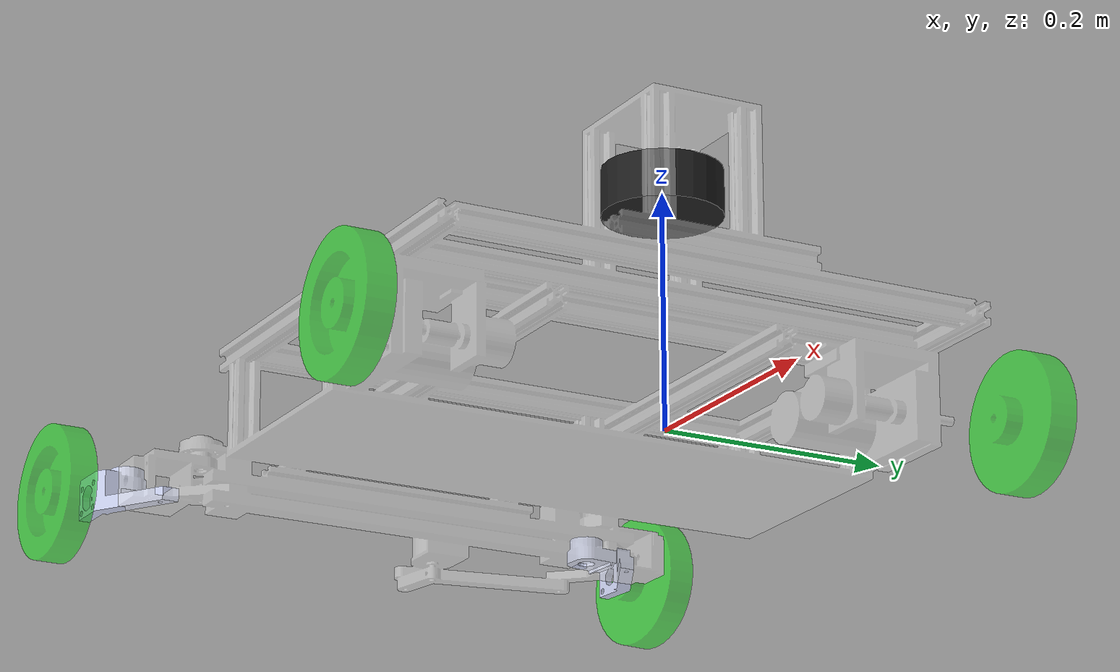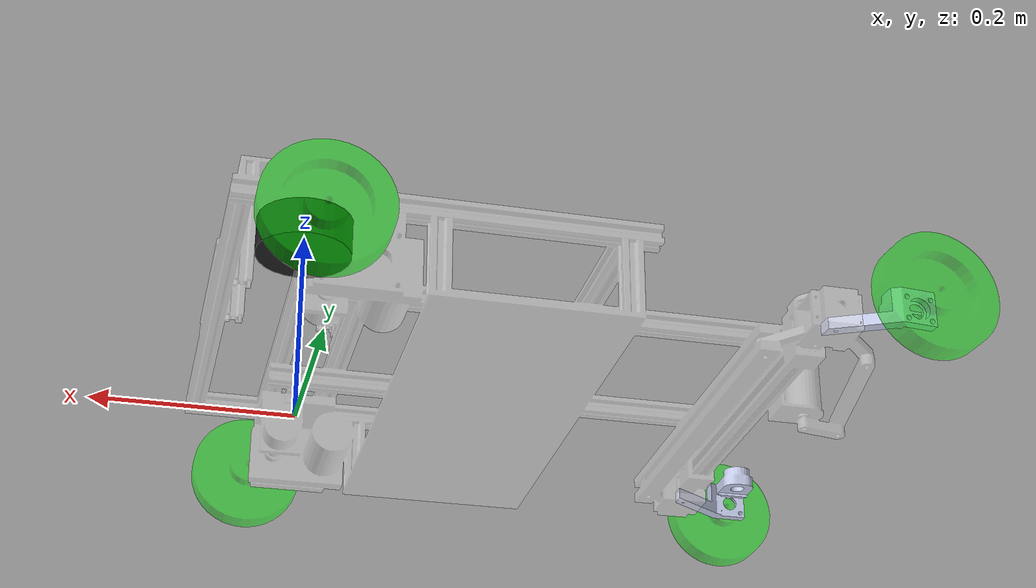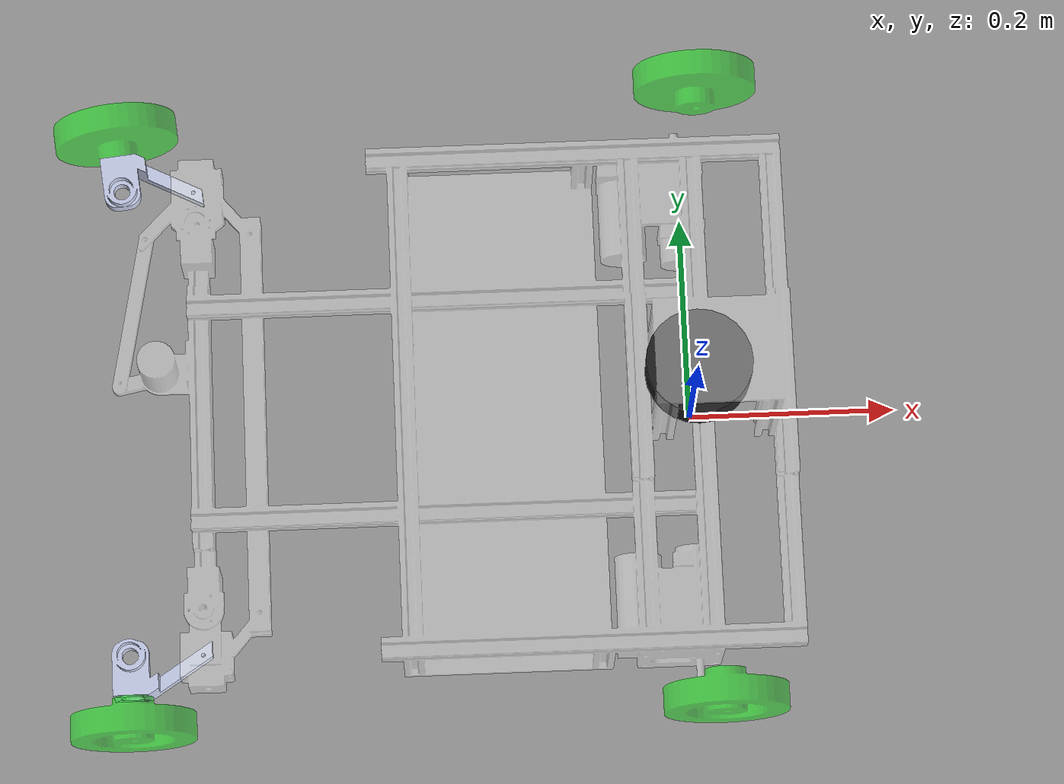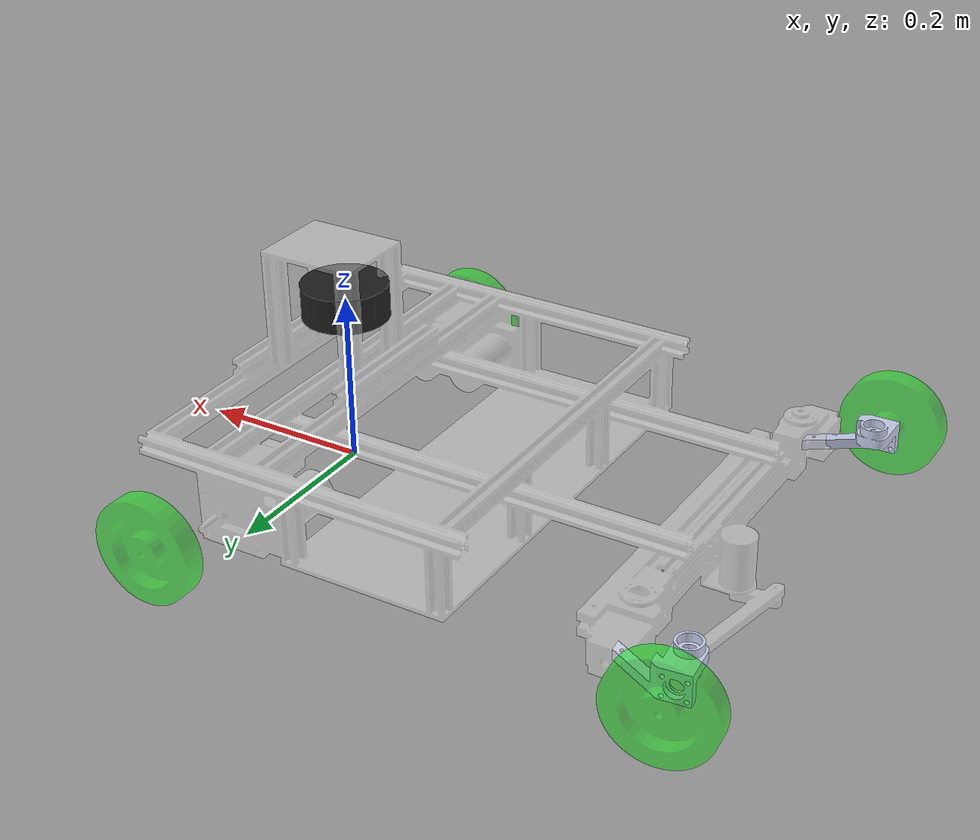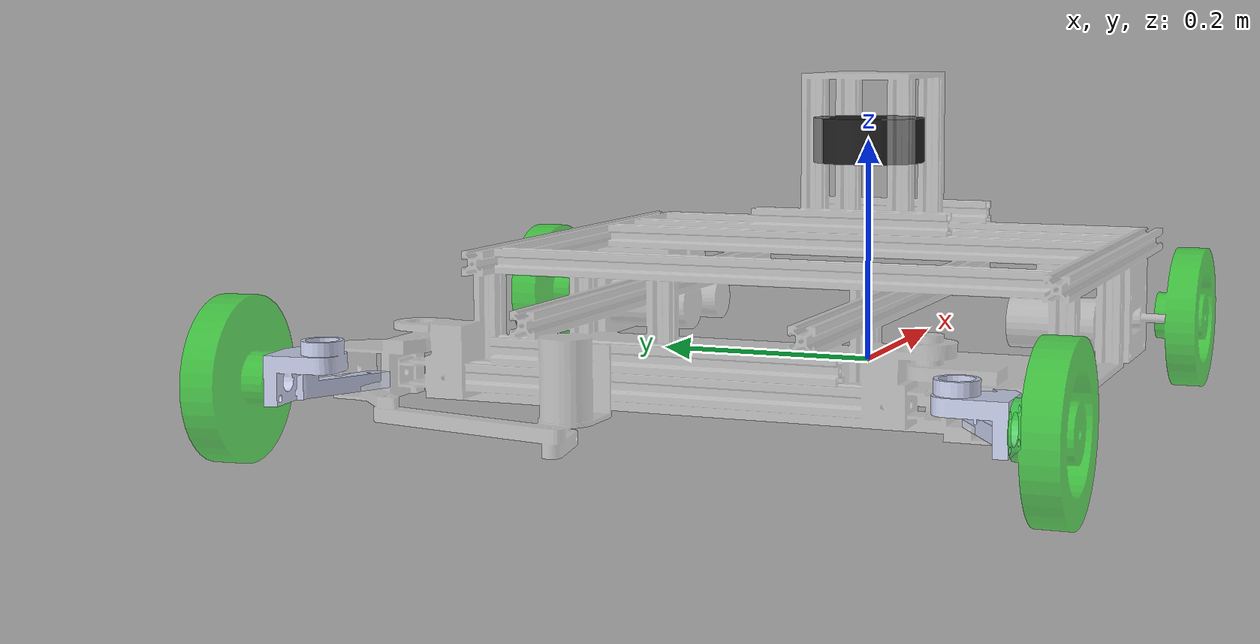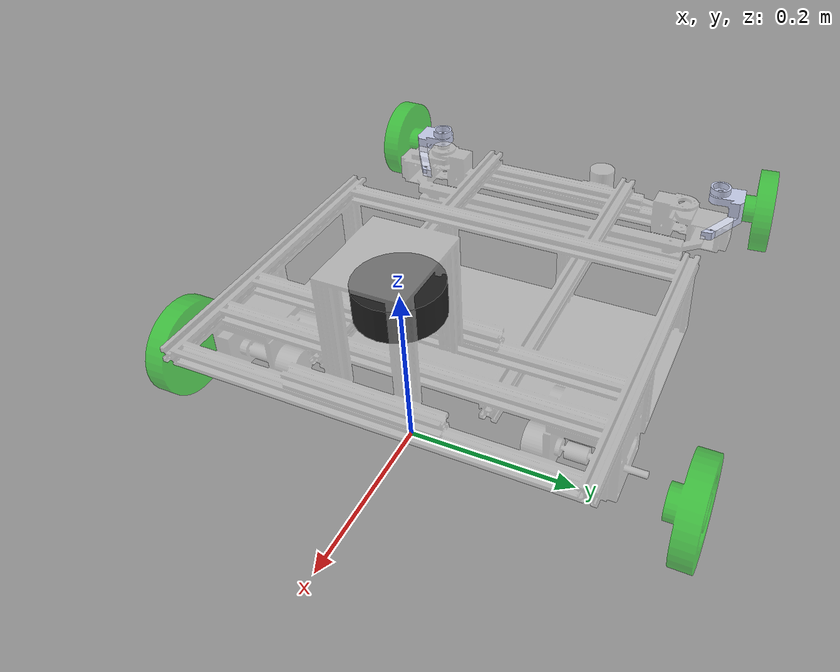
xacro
<?xml version="1.0"?>
<robot xmlns:xacro="http://www.ros.org/wiki/xacro" name="ackermann" >
  <link name="base_footprint">
  </link>
  <joint name="base_link_to_base_footprint" type="fixed">
    <origin xyz="0 0 0.12" rpy="0 0 0"/>
    <parent link="base_footprint"/>
    <child link="base_link"/>
  </joint>

  <link name="laser_frame">
    <visual>
      <geometry>
        <cylinder radius="0.05" length="0.04"/>
      </geometry>
    </visual>
    <collision>
      <geometry>
        <cylinder radius="0.05" length="0.04"/>
      </geometry>
    </collision>
    <inertial>
      <origin
        xyz="0 0 0"
        rpy="0 0 0" />
      <mass
        value="0.01" />
      <inertia
        ixx="0.01" ixy="0.0" ixz="0.0"
        iyy="0.01" iyz="0.0"
        izz="0.01"/>
    </inertial>
  </link>

  <joint name="laser_joint" type="fixed">
    <origin xyz="0 0 0.08" rpy="0 0 0"/>
    <parent link="base_link"/>
    <child link="laser_frame"/>
  </joint>

  <link
    name="base_link">
    <inertial>
      <origin
        xyz="-0.0651994405179663 4.22434509872449E-07 -0.0239634712761258"
        rpy="0 0 0" />
      <mass
        value="5.25555128497609" />
      <inertia
        ixx="0.0414328478617682"
        ixy="-1.82796488685318E-07"
        ixz="3.45960820664179E-07"
        iyy="0.0417152661425413"
        iyz="1.05010040923958E-07"
        izz="0.0821338918053197" />
    </inertial>
    <visual>
      <origin
        xyz="0 0 0"
        rpy="0 0 0" />
      <geometry>
        <mesh
          filename="file:///$(find my_robot_description)/meshes/ackermann_meshes/base_link.STL" />
      </geometry>
      <material
        name="">
        <color
          rgba="1 1 1 0.4" />
      </material>
    </visual>
    <collision>
      <origin
        xyz="0 0 0"
        rpy="0 0 0" />
      <geometry>
        <mesh
          filename="file:///$(find my_robot_description)/meshes/ackermann_meshes/base_link.STL" />
      </geometry>

    </collision>
  </link>
  <link
    name="front_left">
    <inertial>
      <origin
        xyz="3.8858E-15 -0.015274 4.6435E-14"
        rpy="0 0 0" />
      <mass
        value="2.4" />
      <inertia
        ixx="0.00024514"
        ixy="5.4339E-21"
        ixz="-6.7763E-21"
        iyy="0.00045262"
        iyz="6.4709E-20"
        izz="0.00024514" />
    </inertial>
    <visual>
      <origin
        xyz="0 0 0"
        rpy="0 0 0" />
      <geometry>
        <mesh
          filename="file:///$(find my_robot_description)/meshes/ackermann_meshes/front_left.STL" />
      </geometry>
      <material
        name="">
        <color
          rgba="0 1 0 0.5" />
      </material>
    </visual>
    <collision>
      <origin
        xyz="0 0 0"
        rpy="0 0 0" />
      <geometry>
        <mesh
          filename="file:///$(find my_robot_description)/meshes/ackermann_meshes/front_left.STL" />
      </geometry>
    </collision>
  </link>
  <joint
    name="front_left_joint"
    type="fixed">
    <origin
      xyz="0.0190000000000679 0.301000000000045 -0.0695000000000887"
      rpy="3.14159265358979 0.0849179307157281 3.14159265358979" />
    <parent
      link="base_link" />
    <child
      link="front_left" />
    <axis
      xyz="0 1 0" />
  </joint>
  <link
    name="front_right">
    <inertial>
      <origin
        xyz="-2.9643E-14 0.025726 3.5749E-14"
        rpy="0 0 0" />
      <mass
        value="2.4" />
      <inertia
        ixx="0.00024514"
        ixy="5.2554E-21"
        ixz="0"
        iyy="0.00045262"
        iyz="4.3994E-20"
        izz="0.00024514" />
    </inertial>
    <visual>
      <origin
        xyz="0 0 0"
        rpy="0 0 0" />
      <geometry>
        <mesh
          filename="file:///$(find my_robot_description)/meshes/ackermann_meshes/front_right.STL" />
      </geometry>
      <material
        name="">
        <color
          rgba="0 1 0 0.5" />
      </material>
    </visual>
    <collision>
      <origin
        xyz="0 0 0"
        rpy="0 0 0" />
      <geometry>
        <mesh
          filename="file:///$(find my_robot_description)/meshes/ackermann_meshes/front_right.STL" />
      </geometry>
    </collision>
  </link>
  <joint
    name="front_right_joint"
    type="fixed">
    <origin
      xyz="0.0190000000000679 -0.259999999999977 -0.0695000000000887"
      rpy="3.14159265358979 -0.692237011731428 0" />
    <parent
      link="base_link" />
    <child
      link="front_right" />
    <axis
      xyz="0 1 0" />
  </joint>
  <link
    name="left_steering">
    <inertial>
      <origin
        xyz="0.0121532099874294 -0.0166916241895938 -0.0211847288398316"
        rpy="0 0 0" />
      <mass
        value="2" />
      <inertia
        ixx="1.43958495481578E-05"
        ixy="-1.73339990683825E-06"
        ixz="-7.11935154287877E-06"
        iyy="2.95171085845272E-05"
        iyz="2.08772590818048E-06"
        izz="3.10994722329793E-05" />
    </inertial>
    <visual>
      <origin
        xyz="0 0 0"
        rpy="0 0 0" />
      <geometry>
        <mesh
          filename="file:///$(find my_robot_description)/meshes/ackermann_meshes/left_steering.STL" />
      </geometry>
      <material
        name="">
        <color
          rgba="0.792156862745098 0.819607843137255 0.933333333333333 1" />
      </material>
    </visual>
    <collision>
      <origin
        xyz="0 0 0"
        rpy="0 0 0" />
      <geometry>
        <mesh
          filename="file:///$(find my_robot_description)/meshes/ackermann_meshes/left_steering.STL" />
      </geometry>
    </collision>
  </link>
  <joint
    name="left_steering_joint"
    type="fixed">
    <origin
      xyz="-0.544750000000063 0.229999999999977 -0.0837500000002837"
      rpy="3.14159265358979 0 -0.00209254658538632" />
    <parent
      link="base_link" />
    <child
      link="left_steering" />
    <axis
      xyz="0 0 1" />
  </joint>
  <link
    name="rear_left">
    <inertial>
      <origin
        xyz="-1.5192E-06 0.025619 0.006692"
        rpy="0 0 0" />
      <mass
        value="2.4" />
      <inertia
        ixx="0.00024514"
        ixy="-4.9967E-09"
        ixz="-5.3615E-10"
        iyy="0.00045026"
        iyz="2.201E-05"
        izz="0.0002475" />
    </inertial>
    <visual>
      <origin
        xyz="0 0 0"
        rpy="0 0 0" />
      <geometry>
        <mesh
          filename="file:///$(find my_robot_description)/meshes/ackermann_meshes/rear_left.STL" />
      </geometry>
      <material
        name="">
        <color
          rgba="0 1 0 0.5" />
      </material>
    </visual>
    <collision>
      <origin
        xyz="0 0 0"
        rpy="0 0 0" />
      <geometry>
        <mesh
          filename="file:///$(find my_robot_description)/meshes/ackermann_meshes/rear_left.STL" />
      </geometry>
    </collision>
  </link>
  <joint
    name="rear_left_joint"
    type="fixed">
    <origin
      xyz="0 -0.0367488381424265 -0.0159999999999999"
      rpy="3.14159265358979 1.57056930363849 0" />
    <parent
      link="left_steering" />
    <child
      link="rear_left" />
    <axis
      xyz="0 1 0" />
  </joint>
  <link
    name="right_steering">
    <inertial>
      <origin
        xyz="-0.0138648104691156 -0.0152975676601856 -0.021184728839829"
        rpy="0 0 0" />
      <mass
        value="2" />
      <inertia
        ixx="1.49389187707206E-05"
        ixy="3.30295116006257E-06"
        ixz="7.3015684371967E-06"
        iyy="2.89780797923847E-05"
        iyz="1.31491150207248E-06"
        izz="3.11035126633983E-05" />
    </inertial>
    <visual>
      <origin
        xyz="0 0 0"
        rpy="0 0 0" />
      <geometry>
        <mesh
          filename="file:///$(find my_robot_description)/meshes/ackermann_meshes/right_steering.STL" />
      </geometry>
      <material
        name="">
        <color
          rgba="0.792156862745098 0.819607843137255 0.933333333333333 1" />
      </material>
    </visual>
    <collision>
      <origin
        xyz="0 0 0"
        rpy="0 0 0" />
      <geometry>
        <mesh
          filename="file:///$(find my_robot_description)/meshes/ackermann_meshes/right_steering.STL" />
      </geometry>
    </collision>
  </link>
  <joint
    name="right_steering_joint"
    type="fixed">
    <origin
      xyz="-0.544750000000063 -0.230000000000023 -0.0837500000002836"
      rpy="3.14159265358979 0 -3.13242627228221" />
    <parent
      link="base_link" />
    <child
      link="right_steering" />
    <axis
      xyz="0 0 1" />
  </joint>
  <link
    name="rear_right">
    <inertial>
      <origin
        xyz="1.415E-10 0.025722 1.2793E-08"
        rpy="0 0 0" />
      <mass
        value="2.4" />
      <inertia
        ixx="0.00024514"
        ixy="4.6696E-13"
        ixz="9.4021E-20"
        iyy="0.00045262"
        iyz="4.2319E-11"
        izz="0.00024514" />
    </inertial>
    <visual>
      <origin
        xyz="0 0 0"
        rpy="0 0 0" />
      <geometry>
        <mesh
          filename="file:///$(find my_robot_description)/meshes/ackermann_meshes/rear_right.STL" />
      </geometry>
      <material
        name="">
        <color
          rgba="0 1 0 0.5" />
      </material>
    </visual>
    <collision>
      <origin
        xyz="0 0 0"
        rpy="0 0 0" />
      <geometry>
        <mesh
          filename="file:///$(find my_robot_description)/meshes/ackermann_meshes/rear_right.STL" />
      </geometry>
    </collision>
  </link>
  <joint
    name="rear_right_joint"
    type="fixed">
    <origin
      xyz="0 -0.0370034448281129 -0.0159999999999995"
      rpy="3.14159265358979 -1.55976234848309 0" />
    <parent
      link="right_steering" />
    <child
      link="rear_right" />
    <axis
      xyz="0 1 0" />
  </joint>

    <gazebo reference="front_left">
      <material>Gazebo/Green</material>
    </gazebo>

    <gazebo reference="front_right">
      <material>Gazebo/Green</material>
    </gazebo>

    <gazebo reference="rear_left">
      <material>Gazebo/Green</material>
    </gazebo>

    <gazebo reference="rear_right">
      <material>Gazebo/Green</material>
    </gazebo>

    <gazebo reference="right_steering">
      <material>Gazebo/Red</material>
    </gazebo>

    <gazebo reference="left_steering">
      <material>Gazebo/Red</material>
    </gazebo>

  <gazebo>
    <plugin name="gazebo_ros_planar_move_ack" filename="libgazebo_ros_planar_move.so">

      <ros>

        <!-- Add a namespace -->
        <namespace></namespace>

        <!-- Remap the default topic -->
        <remapping>/cmd_vel:=/cmd_vel</remapping>
        <remapping>odom:=/diffdrive/odom</remapping>

      </ros>

      <update_rate>100</update_rate>
      <publish_rate>100</publish_rate>

      <!-- output -->
      <publish_odom>true</publish_odom>
      <publish_odom_tf>true</publish_odom_tf>

      <odometry_frame>odom</odometry_frame>
      <robot_base_frame>base_footprint</robot_base_frame>
      <publish_wheel_tf>true</publish_wheel_tf>

    </plugin>
  </gazebo>

 <gazebo reference="laser_frame">
    <material>Gazebo/Black</material>

    <sensor name="laser" type="ray">
      <namespace></namespace>
      <pose>0 0 0 0 0 0</pose>
      <visualize>false</visualize>
      <update_rate>10</update_rate>
      <ray>
        <scan>
          <horizontal>
            <samples>360</samples>
            <min_angle>-3.14</min_angle>
            <max_angle>3.14</max_angle>
          </horizontal>
        </scan>
        <range>
          <min>0.3</min>
          <max>12</max>
        </range>
      </ray>
      <plugin name="laser" filename="libgazebo_ros_ray_sensor.so">
        <namespace></namespace>
        <ros>
          <argument>~/out:=scan</argument>
        </ros>
        <output_type>sensor_msgs/LaserScan</output_type>
        <frame_name>laser_frame</frame_name>
      </plugin>
    </sensor>
  </gazebo>
</robot>
